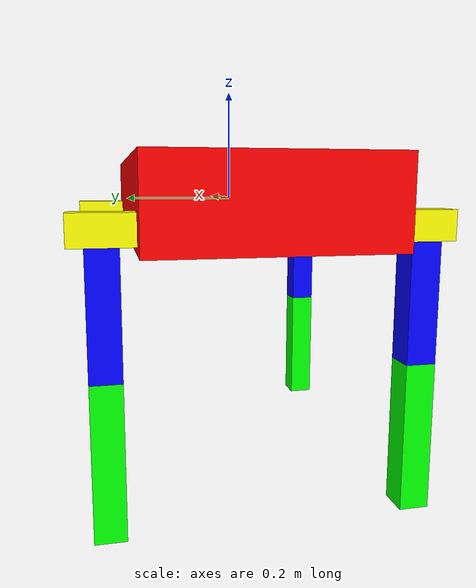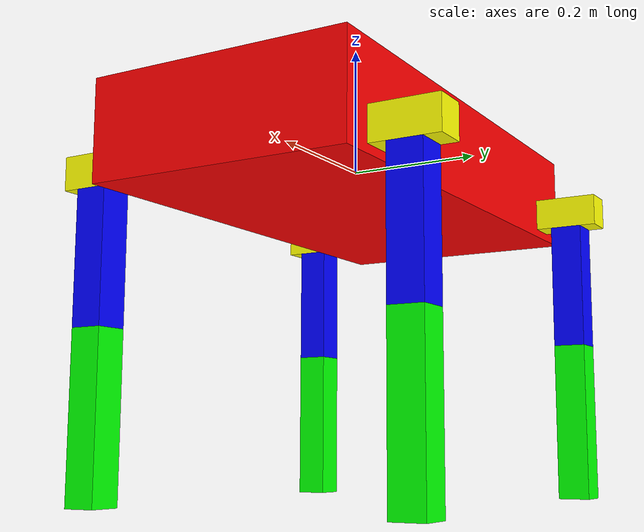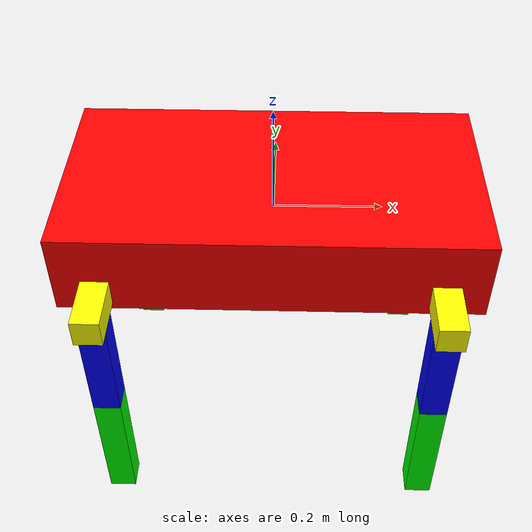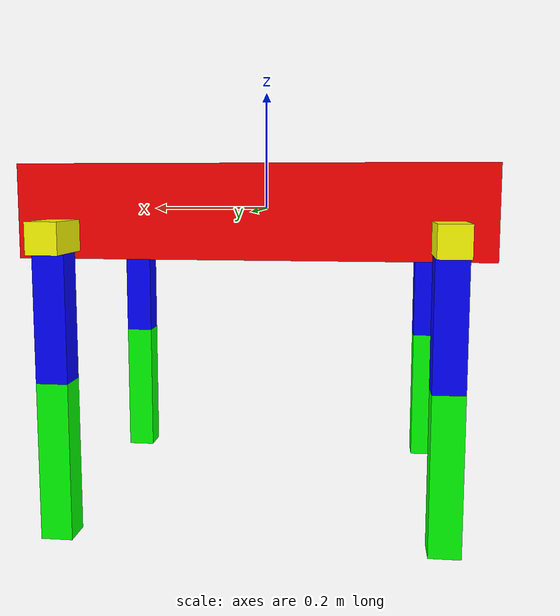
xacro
<?xml version="1.0"?>
<robot xmlns:xacro="http://www.ros.org/wiki/xacro" name="quadruped">

    <xacro:property name="M_PI" value="3.1415"/>

    <xacro:property name="body_length" value="0.75"/>
    <xacro:property name="body_width" value="0.4"/>
    <xacro:property name="body_height" value="0.15"/>

    <xacro:property name="hip_length" value="0.1"/>
    <xacro:property name="femur_length" value="0.2"/>
    <xacro:property name="tibia_length" value="0.25"/>
    <xacro:property name="leg_thickness" value="0.05"/>

    <xacro:property name="leg_x_offset" value="${2*body_length/5}"/>
    <xacro:property name="leg_y_offset" value="${body_width/2 + hip_length/2}"/>
    <xacro:property name="leg_z_offset" value="${-body_height/4}"/>

    <xacro:macro name="leg" params="prefix *joint_pose">

        <link name="${prefix}_hip">
            <visual>
                <origin xyz="0.0 0.0 0.0" rpy="0.0 0.0 ${M_PI/2}"/>
                <geometry>
                    <box size="${hip_length} ${leg_thickness} ${leg_thickness}"/>
                </geometry>
                <material name="Yellow">
                    <color rgba="1.0 1.0 0.0 1.0"/>
                </material>
            </visual>
            <collision>
                <geometry>
                    <box size="${hip_length} ${leg_thickness} ${leg_thickness}"/>
                </geometry>
            </collision>
            <inertial>
                <mass value="1.0"/>
                <origin xyz="0.0 0.0 0.0" rpy="0.0 0.0 0.0"/>
                <inertia ixx="1e-6" ixy="0.0" ixz="0.0" iyy="1e-6" iyz="0.0" izz="1e-6"/>
            </inertial>
        </link>

        <joint name="${prefix}_hip_roll_joint" type="revolute">
            <parent link="base_link"/>
            <child link="${prefix}_hip"/>
            <axis xyz="1 0 0"/>
            <limit lower="-3.14159" upper="3.14159" velocity="50.0" effort="1000.0"/>
            <xacro:insert_block name="joint_pose"/>
        </joint>

        <link name="${prefix}_femur">
            <visual>
                <origin xyz="0.0 0.0 ${-femur_length/2}" rpy="0.0 ${M_PI/2} 0.0"/>
                <geometry>
                    <box size="${femur_length} ${leg_thickness} ${leg_thickness}"/>
                </geometry>
                <material name="Blue">
                    <color rgba="0.0 0.0 1.0 1.0"/>
                </material>
            </visual>
            <collision>
                <origin xyz="0.0 0.0 ${-femur_length/2}" rpy="0.0 ${M_PI/2} 0.0"/>
                <geometry>
                    <box size="${femur_length} ${leg_thickness} ${leg_thickness}"/>
                </geometry>
            </collision>
            <inertial>
                <mass value="1.0"/>
                <origin xyz="0.0 0.0 0.0" rpy="0.0 0.0 0.0"/>
                <inertia ixx="1e-6" ixy="0.0" ixz="0.0" iyy="1e-6" iyz="0.0" izz="1e-6"/>
            </inertial>
        </link>

        <joint name="${prefix}_hip_pitch_joint" type="revolute">
            <parent link="${prefix}_hip"/>
            <child link="${prefix}_femur"/>
            <axis xyz="0 1 0"/>
            <limit lower="-3.14159" upper="3.14159" velocity="50.0" effort="1000.0"/>
            <origin xyz="0.0 0.0 -${leg_thickness/2}" rpy="0.0 0.0 0.0"/>
        </joint>

        <link name="${prefix}_tibia">
            <visual>
                <origin xyz="0.0 0.0 ${-tibia_length/2}" rpy="0.0 ${M_PI/2} 0.0"/>
                <geometry>
                    <box size="${tibia_length} ${leg_thickness} ${leg_thickness}" />
                </geometry>
                <material name="Green">
                    <color rgba="0.0 1.0 0.0 1.0"/>
                </material>
            </visual>
            <collision>
                <origin xyz="0.0 0.0 ${-tibia_length/2}" rpy="0.0 ${M_PI/2} 0.0"/>
                <geometry>
                    <box size="${tibia_length} ${leg_thickness} ${leg_thickness}"/>
                </geometry>
            </collision>
            <inertial>
                <mass value="1.0"/>
                <origin xyz="0.0 0.0 0.0" rpy="0.0 0.0 0.0"/>
                <inertia ixx="1e-6" ixy="0.0" ixz="0.0" iyy="1e-6" iyz="0.0" izz="1e-6"/>
            </inertial>
        </link>

        <joint name="${prefix}_elbow_joint" type="revolute">
            <parent link="${prefix}_femur"/>
            <child link="${prefix}_tibia"/>
            <axis xyz="0 1 0"/>
            <limit lower="-3.14159" upper="3.14159" velocity="50.0" effort="1000.0"/>
            <origin xyz="0.0 0.0 -${femur_length}" rpy="0.0 0.0 0.0"/>
        </joint>

    </xacro:macro>

    <link name="base_link">
        <visual>
            <geometry>
                <box size="${body_length} ${body_width} ${body_height}" />
            </geometry>
            <material name="Red">
                <color rgba="1.0 0.0 0.0 1.0"/>
            </material>
        </visual>
        <collision>
            <geometry>
                <box size="${body_length} ${body_width} ${body_height}" />
            </geometry>
        </collision>
        <inertial>
            <mass value="1.0"/>
            <origin xyz="0.0 0.0 0.0" rpy="0.0 0.0 0.0"/>
            <inertia ixx="1e-6" ixy="0.0" ixz="0.0" iyy="1e-6" iyz="0.0" izz="1e-6"/>
        </inertial>
    </link>

    <xacro:leg prefix="front_left">
        <origin xyz="${leg_x_offset} ${leg_y_offset} ${leg_z_offset}" rpy="0.0 0.0 0.0"/>
    </xacro:leg>

    <xacro:leg prefix="front_right">
        <origin xyz="${leg_x_offset} ${-leg_y_offset} ${leg_z_offset}" rpy="0.0 0.0 0.0"/>
    </xacro:leg>

    <xacro:leg prefix="back_left">
        <origin xyz="${-leg_x_offset} ${leg_y_offset} ${leg_z_offset}" rpy="0.0 0.0 0.0"/>
    </xacro:leg>

    <xacro:leg prefix="back_right">
        <origin xyz="${-leg_x_offset} ${-leg_y_offset} ${leg_z_offset}" rpy="0.0 0.0 0.0"/>
    </xacro:leg>

</robot>
